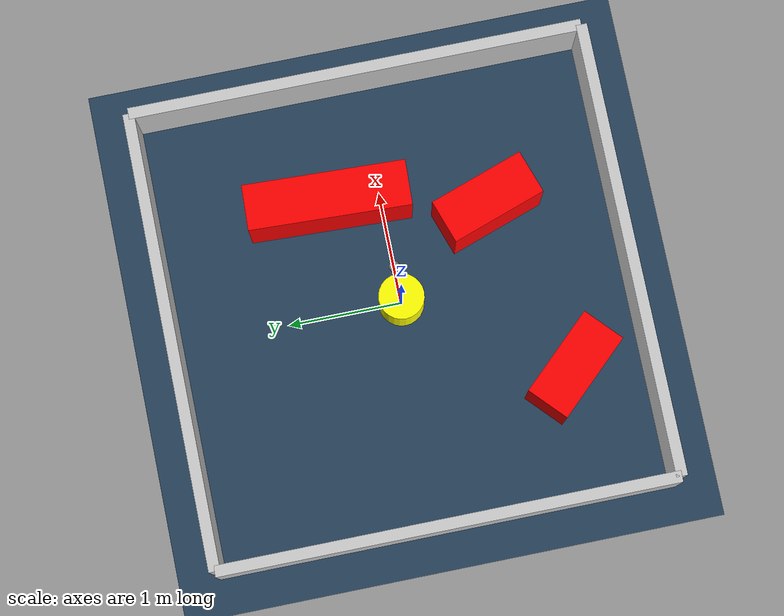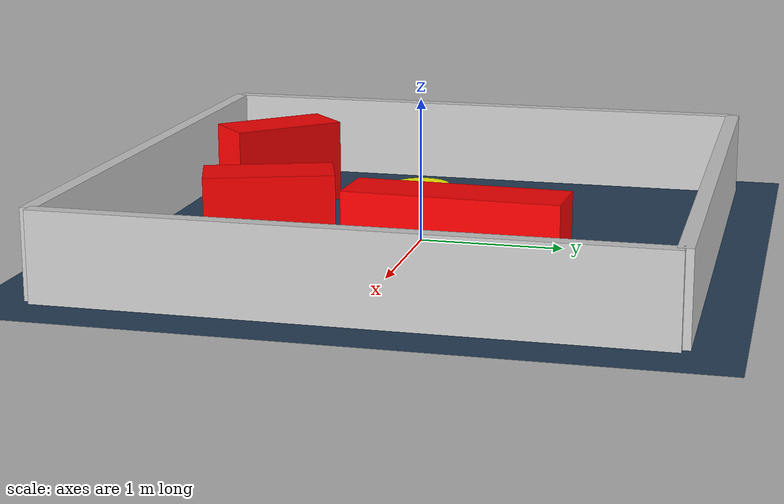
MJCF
<?xml version="1.0" ?>
<mujoco model="generated_environment">
  <option timestep="0.01" integrator="RK4" cone="elliptic"/>
  <default>
    <geom density="1"/>
  </default>
  <asset>
    <texture builtin="gradient" height="3072" rgb1="0.3 0.5 0.7" rgb2="0 0 0" type="skybox" width="512"/>
    <texture builtin="checker" height="300" mark="edge" markrgb="0.8 0.8 0.8" name="groundplane" rgb1="0.2 0.3 0.4" rgb2="0.1 0.2 0.3" type="2d" width="300"/>
    <material name="groundplane" reflectance="0.2" texrepeat="5 5" texture="groundplane" texuniform="true"/>
    <material name="robot" rgba="0.0 1.0 0.0 1"/>
  </asset>
  <worldbody>
    <light dir="0 0 -1" directional="true" pos="0 0 1.5"/>
    <geom condim="4" friction="1.0 0.005 0.001" material="groundplane" name="floor" size="0 0 0.05" type="plane"/>
    <body name="walls">
      <geom name="wall_1" condim="4" pos="-2.0 0.0 0.3" rgba="0.800000011920929 0.800000011920929 0.800000011920929 1.0" size="0.05 2.0 0.3" type="box"/>
      <geom name="wall_2" condim="4" pos="2.0 0.0 0.3" rgba="0.800000011920929 0.800000011920929 0.800000011920929 1.0" size="0.05 2.0 0.3" type="box"/>
      <geom name="wall_3" condim="4" pos="0.0 -2.0 0.3" rgba="0.800000011920929 0.800000011920929 0.800000011920929 1.0" size="2.0 0.05 0.3" type="box"/>
      <geom name="wall_4" condim="4" pos="0.0 2.0 0.3" rgba="0.800000011920929 0.800000011920929 0.800000011920929 1.0" size="2.0 0.05 0.3" type="box"/>
    </body>
    <body name="robot">
      <joint name="joint_x" type="slide" pos="0 0 0" axis="1 0 0"/>
      <joint name="joint_y" type="slide" pos="0 0 0" axis="0 1 0"/>
      <geom name="robot" type="sphere" pos="0.3 0.0 0.2" size="0.05" mass="5." friction="1.0 0.005 0.0001" condim="4" rgba="0.5 0.5 0.5 1.0"/>
      <site name="sensor_ball"/>
    </body>
    <body name="obstacle_movable_1">
      <geom name="obstacle_movable_1" condim="4" pos="0.0 0.0 0.2" euler="0 0 0.0" friction="1.0 0.005 0.001" rgba="1.0 1.0 0.0 1.0" size="0.2 0.2 0.0" type="cylinder" mass="0.1"/>
      <joint type="free"/>
    </body>
    <body name="obstacle_2_static">
      <geom name="obstacle_2_static" condim="4" pos="-0.8963266552972231 -1.324929012454902 0.3" euler="0 0 313.1554091252635" friction="1.0 0.005 0.001" rgba="1 0 0 1" size="0.41715948467889485 0.2 0.3" type="box"/>
    </body>
    <body name="obstacle_3_static">
      <geom name="obstacle_3_static" condim="4" pos="0.9593406103088047 0.4581538674870982 0.3" euler="0 0 87.75638224457971" friction="1.0 0.005 0.001" rgba="1 0 0 1" size="0.7125649334970563 0.2 0.3" type="box"/>
    </body>
    <body name="obstacle_4_static">
      <geom name="obstacle_4_static" condim="4" pos="0.6692468272880863 -0.891046854848192 0.3" euler="0 0 108.9707098263549" friction="1.0 0.005 0.001" rgba="1 0 0 1" size="0.43607638575275354 0.2 0.3" type="box"/>
    </body>
  </worldbody>
  <actuator>
    <motor name="actuator_x" joint="joint_x" gear="1" ctrlrange="-1 1"/>
    <motor name="actuator_y" joint="joint_y" gear="1" ctrlrange="-1 1"/>
  </actuator>
</mujoco>
